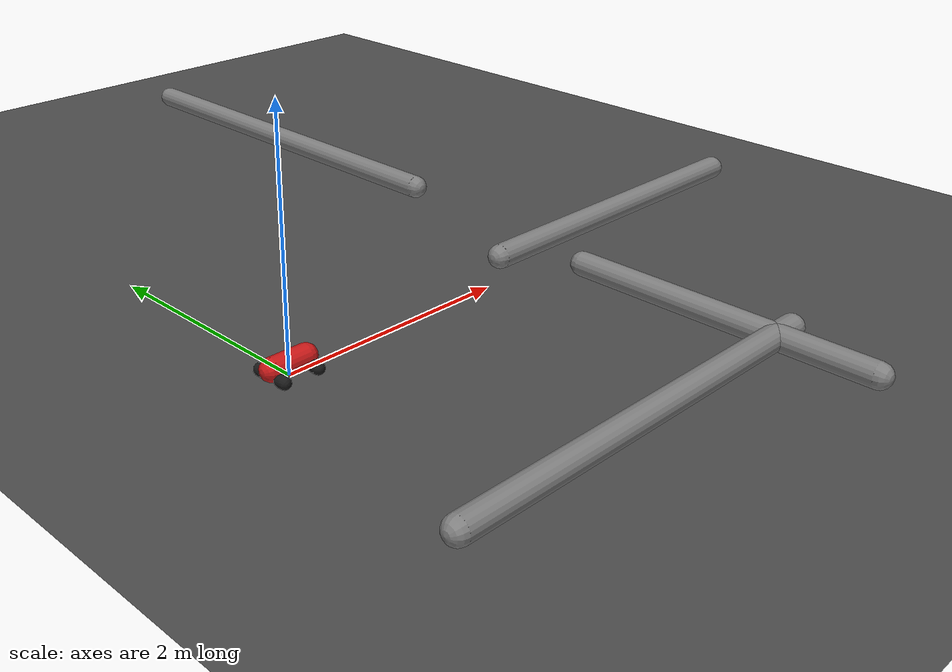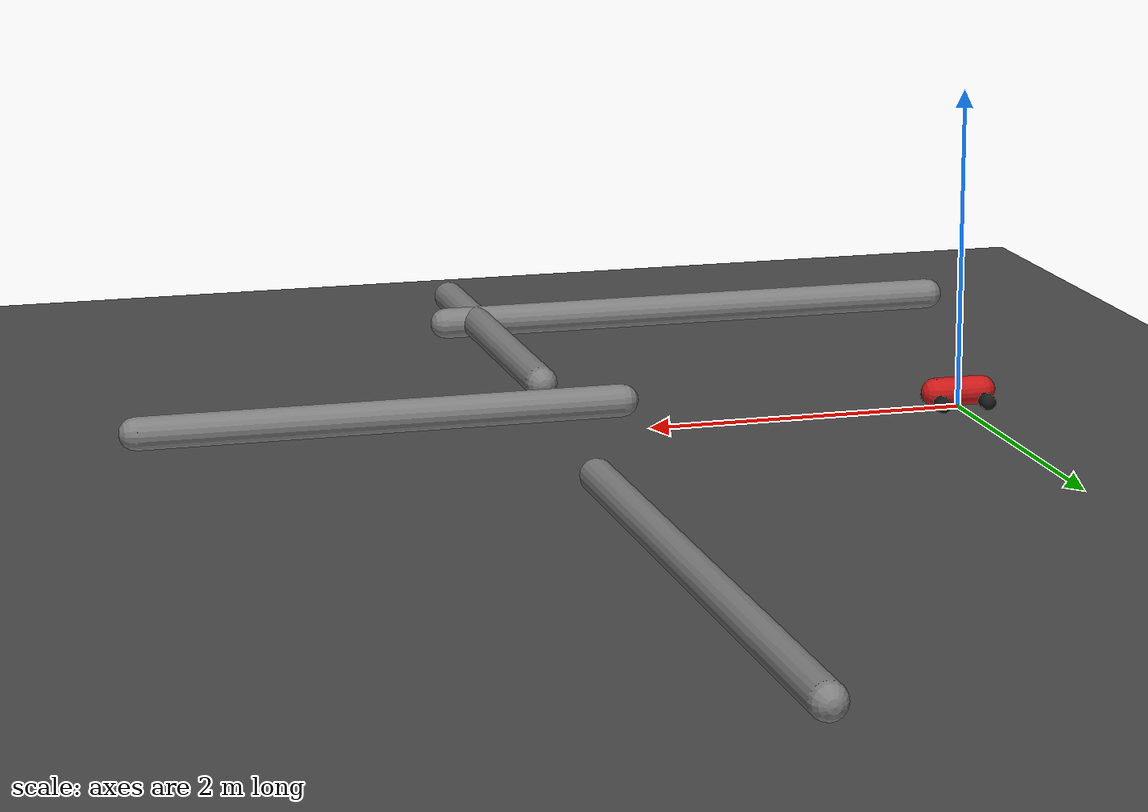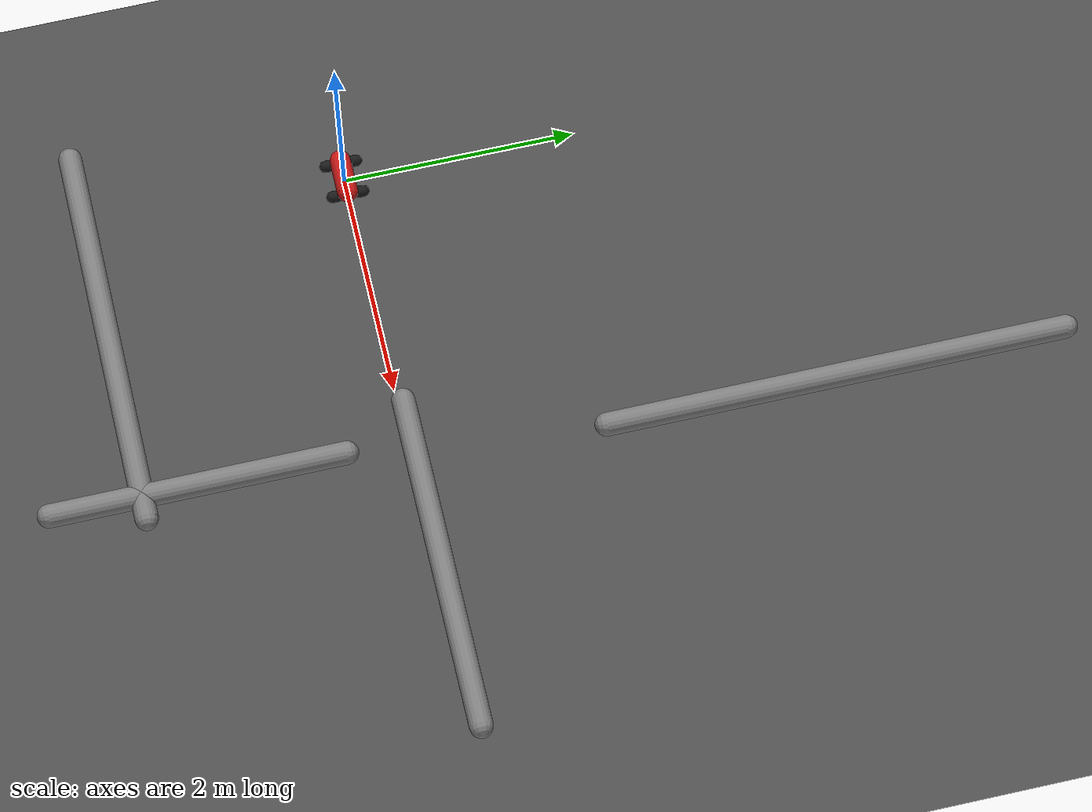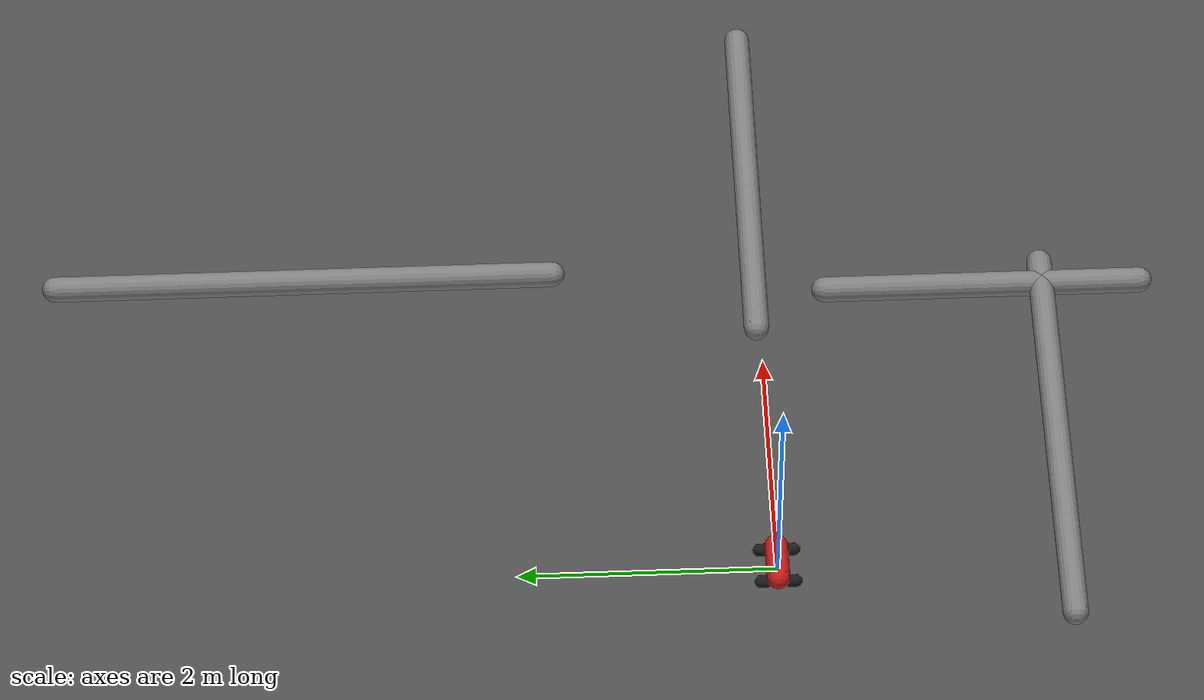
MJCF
<mujoco model="ackermann_car_scene">
  <compiler angle="radian"/>
  <option timestep="0.002" gravity="0 0 -9.81" iterations="4" cone="pyramidal"/>

  <default>
    <joint damping="0.05"/>
    <geom friction="2.0 0.1 0.1" contype="1" conaffinity="1"/>
  </default>

  <worldbody>
    <geom name="floor" type="plane" size="8.0 8.0 0.1" rgba="0.3 0.3 0.3 1"/>
    <geom name="wall_0" type="capsule" size="0.1" fromto="2.554187301312954 -3.026353137102671 0.2 2.554187301312954 -0.5140177934766348 0.2" rgba="0.5 0.5 0.5 1"/>
    <geom name="wall_1" type="capsule" size="0.1" fromto="2.193788417439228 0.04218170235651186 0.2 5.1522435160768065 0.04218170235651186 0.2" rgba="0.5 0.5 0.5 1"/>
    <geom name="wall_2" type="capsule" size="0.1" fromto="-0.629434285118545 -2.245442927738035 0.2 2.760076225274515 -2.245442927738035 0.2" rgba="0.5 0.5 0.5 1"/>
    <geom name="wall_3" type="capsule" size="0.1" fromto="2.7919551239693057 1.6410117089091782 0.2 2.7919551239693057 5.597975399003311 0.2" rgba="0.5 0.5 0.5 1"/>

    <body name="chassis" pos="0 0 0.1">
      <freejoint name="chassis_free"/>
      <geom name="chassis_geom" type="capsule" size="0.09" fromto="-0.15 0 0 0.15 0 0" mass="3.0" rgba="0.8 0.1 0.1 1"/>

      <body name="wheel_fl" pos="0.1483 0.115 -0.05">
        <joint name="steer_fl" type="hinge" axis="0 0 1" range="-0.6 0.6"/>
        <geom name="knuckle_fl_geom" type="sphere" size="0.01" mass="0.05" rgba="0.2 0.2 0.2 1"/>
        <body name="wheel_fl_spin">
          <joint name="spin_fl" type="hinge" axis="0 1 0" damping="0.001"/>
          <geom name="wheel_fl_geom" type="capsule" size="0.05" fromto="0 -0.0215 0 0 0.0215 0" mass="0.1" rgba="0.1 0.1 0.1 1"/>
        </body>
      </body>
      <body name="wheel_fr" pos="0.1483 -0.115 -0.05">
        <joint name="steer_fr" type="hinge" axis="0 0 1" range="-0.6 0.6"/>
        <geom name="knuckle_fr_geom" type="sphere" size="0.01" mass="0.05" rgba="0.2 0.2 0.2 1"/>
        <body name="wheel_fr_spin">
          <joint name="spin_fr" type="hinge" axis="0 1 0" damping="0.001"/>
          <geom name="wheel_fr_geom" type="capsule" size="0.05" fromto="0 -0.0215 0 0 0.0215 0" mass="0.1" rgba="0.1 0.1 0.1 1"/>
        </body>
      </body>
      <body name="wheel_rl" pos="-0.1483 0.115 -0.05">
        <joint name="spin_rl" type="hinge" axis="0 1 0" damping="0.001"/>
        <geom name="wheel_rl_geom" type="capsule" size="0.05" fromto="0 -0.0215 0 0 0.0215 0" mass="0.1" rgba="0.1 0.1 0.1 1"/>
      </body>
      <body name="wheel_rr" pos="-0.1483 -0.115 -0.05">
        <joint name="spin_rr" type="hinge" axis="0 1 0" damping="0.001"/>
        <geom name="wheel_rr_geom" type="capsule" size="0.05" fromto="0 -0.0215 0 0 0.0215 0" mass="0.1" rgba="0.1 0.1 0.1 1"/>
      </body>
    </body>
  </worldbody>

  <equality>
    <joint joint1="steer_fl" joint2="steer_fr"/>
  </equality>

  <actuator>
    <motor name="steer" joint="steer_fl" gear="1" ctrlrange="-1 1"/>
    <motor name="throttle_rl" joint="spin_rl" gear="0.78" ctrlrange="-1 1"/>
    <motor name="throttle_rr" joint="spin_rr" gear="0.78" ctrlrange="-1 1"/>
  </actuator>
</mujoco>
